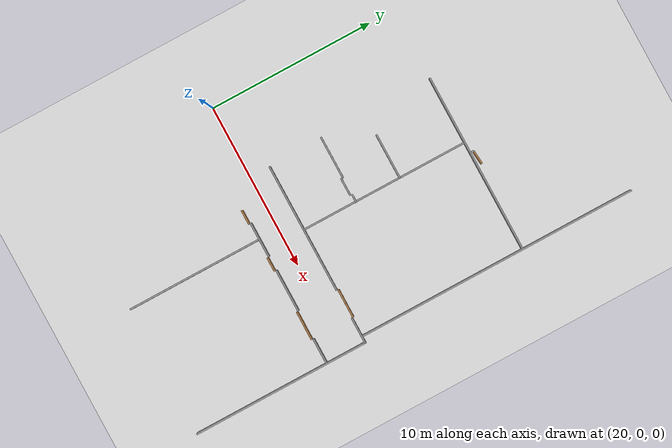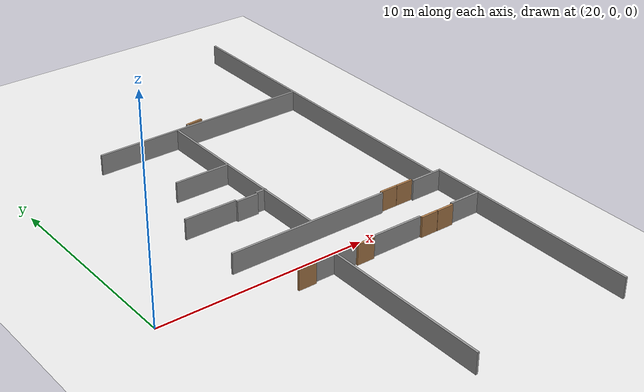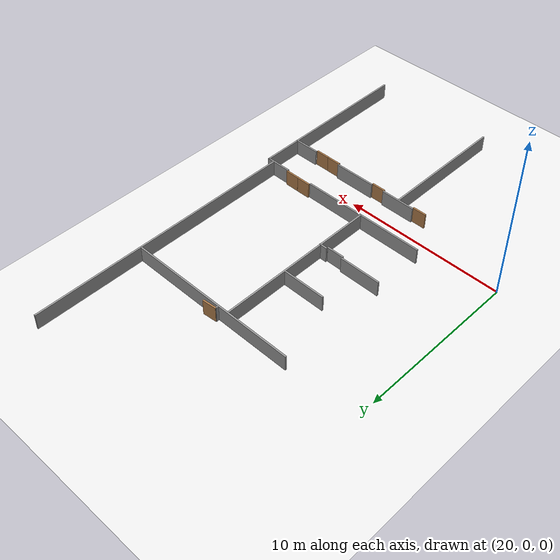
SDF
<sdf version="1.6">
 <world name="default">
  <model name="ground_plane">
   <static>1</static>
   <link name="link">
    <collision name="collision">
     <geometry><plane><normal>0 0 1</normal><size>100 100</size></plane></geometry>
     <surface><friction><ode><mu>100</mu><mu2>50</mu2></ode></friction></surface>
    </collision>
    <visual name="visual">
     <cast_shadows>0</cast_shadows>
     <geometry><plane><normal>0 0 1</normal><size>100 100</size></plane></geometry>
     <material>
      <script><uri>file://media/materials/scripts/gazebo.material</uri><name>Gazebo/WhiteGlow</name></script>
     </material>
    </visual>
   </link>
  </model>
  <model name="L81">
   <link name="link_clone_0_clone_0_clone_0_clone_clone">
    <pose>9.87549 45.6856 -0 0 -0 0</pose>
    <inertial>
     <mass>0.151422</mass>
     <inertia>
      <ixx>0.106624</ixx>
      <ixy>0</ixy>
      <ixz>0</ixz>
      <iyy>0.0127447</iyy>
      <iyz>0</iyz>
      <izz>0.0941318</izz>
     </inertia>
    </inertial>
    <visual name="visual">
     <geometry><box><size>0.1 2.72944 1</size></box></geometry>
     <material>
      <script><name>Gazebo/Grey</name><uri>file://media/materials/scripts/gazebo.material</uri></script>
      <shader type="pixel"><normal_map>__default__</normal_map></shader>
      <ambient>0.3 0.3 0.3 1</ambient>
      <diffuse>0.7 0.7 0.7 1</diffuse>
      <specular>0.01 0.01 0.01 1</specular>
      <emissive>0 0 0 1</emissive>
     </material>
    </visual>
    <collision name="collision">
     <geometry><box><size>0.1 2.72944 1</size></box></geometry>
     <surface>
      <friction>
       <ode><mu>1</mu><mu2>1</mu2><fdir1>0 0 0</fdir1><slip1>0</slip1><slip2>0</slip2></ode>
       <torsional>
        <coefficient>1</coefficient>
        <patch_radius>0</patch_radius>
        <surface_radius>0</surface_radius>
        <use_patch_radius>1</use_patch_radius>
        <ode><slip>0</slip></ode>
       </torsional>
      </friction>
      <bounce><restitution_coefficient>0</restitution_coefficient><threshold>1e+06</threshold></bounce>
      <contact>
       <collide_without_contact>0</collide_without_contact>
       <collide_without_contact_bitmask>1</collide_without_contact_bitmask>
       <collide_bitmask>1</collide_bitmask>
       <ode>
        <soft_cfm>0</soft_cfm>
        <soft_erp>0.2</soft_erp>
        <kp>1e+13</kp>
        <kd>1</kd>
        <max_vel>0.01</max_vel>
        <min_depth>0</min_depth>
       </ode>
       <bullet>
        <split_impulse>1</split_impulse>
        <split_impulse_penetration_threshold>-0.01</split_impulse_penetration_threshold>
        <soft_cfm>0</soft_cfm>
        <soft_erp>0.2</soft_erp>
        <kp>1e+13</kp>
        <kd>1</kd>
       </bullet>
      </contact>
     </surface>
    </collision>
   </link>
   <link name="link_clone_0_clone_0_clone_0_clone_clone_0">
    <pose>12.6493 46.8473 -0 0 -0 0</pose>
    <inertial>
     <mass>0.0297049</mass>
     <inertia>
      <ixx>0.00316281</ixx>
      <ixy>0</ixy>
      <ixz>0</ixz>
      <iyy>0.00250016</iyy>
      <iyz>0</iyz>
      <izz>0.000712157</izz>
     </inertia>
    </inertial>
    <visual name="visual">
     <geometry><box><size>0.1 0.526966 1</size></box></geometry>
     <material>
      <script><name>Gazebo/Grey</name><uri>file://media/materials/scripts/gazebo.material</uri></script>
      <shader type="pixel"><normal_map>__default__</normal_map></shader>
      <ambient>0.3 0.3 0.3 1</ambient>
      <diffuse>0.7 0.7 0.7 1</diffuse>
      <specular>0.01 0.01 0.01 1</specular>
      <emissive>0 0 0 1</emissive>
     </material>
    </visual>
    <collision name="collision">
     <geometry><box><size>0.1 0.526966 1</size></box></geometry>
     <surface>
      <friction>
       <ode><mu>1</mu><mu2>1</mu2><fdir1>0 0 0</fdir1><slip1>0</slip1><slip2>0</slip2></ode>
       <torsional>
        <coefficient>1</coefficient>
        <patch_radius>0</patch_radius>
        <surface_radius>0</surface_radius>
        <use_patch_radius>1</use_patch_radius>
        <ode><slip>0</slip></ode>
       </torsional>
      </friction>
      <bounce><restitution_coefficient>0</restitution_coefficient><threshold>1e+06</threshold></bounce>
      <contact>
       <collide_without_contact>0</collide_without_contact>
       <collide_without_contact_bitmask>1</collide_without_contact_bitmask>
       <collide_bitmask>1</collide_bitmask>
       <ode>
        <soft_cfm>0</soft_cfm>
        <soft_erp>0.2</soft_erp>
        <kp>1e+13</kp>
        <kd>1</kd>
        <max_vel>0.01</max_vel>
        <min_depth>0</min_depth>
       </ode>
       <bullet>
        <split_impulse>1</split_impulse>
        <split_impulse_penetration_threshold>-0.01</split_impulse_penetration_threshold>
        <soft_cfm>0</soft_cfm>
        <soft_erp>0.2</soft_erp>
        <kp>1e+13</kp>
        <kd>1</kd>
       </bullet>
      </contact>
     </surface>
    </collision>
   </link>
   <link name="link_clone_0_clone_0_clone_0_clone_clone_0_clone">
    <pose>12.6506 44.2533 0 0 -0 0</pose>
    <inertial>
     <mass>0.144952</mass>
     <inertia>
      <ixx>0.0919529</ixx>
      <ixy>0</ixy>
      <ixz>0</ixz>
      <iyy>0.0122002</iyy>
      <iyz>0</iyz>
      <izz>0.0799943</izz>
     </inertia>
    </inertial>
    <visual name="visual">
     <geometry><box><size>0.1 2.57146 1</size></box></geometry>
     <material>
      <script><name>Gazebo/Grey</name><uri>file://media/materials/scripts/gazebo.material</uri></script>
      <shader type="pixel"><normal_map>__default__</normal_map></shader>
      <ambient>0.3 0.3 0.3 1</ambient>
      <diffuse>0.7 0.7 0.7 1</diffuse>
      <specular>0.01 0.01 0.01 1</specular>
      <emissive>0 0 0 1</emissive>
     </material>
    </visual>
    <collision name="collision">
     <geometry><box><size>0.1 2.57146 1</size></box></geometry>
     <surface>
      <friction>
       <ode><mu>1</mu><mu2>1</mu2><fdir1>0 0 0</fdir1><slip1>0</slip1><slip2>0</slip2></ode>
       <torsional>
        <coefficient>1</coefficient>
        <patch_radius>0</patch_radius>
        <surface_radius>0</surface_radius>
        <use_patch_radius>1</use_patch_radius>
        <ode><slip>0</slip></ode>
       </torsional>
      </friction>
      <bounce><restitution_coefficient>0</restitution_coefficient><threshold>1e+06</threshold></bounce>
      <contact>
       <collide_without_contact>0</collide_without_contact>
       <collide_without_contact_bitmask>1</collide_without_contact_bitmask>
       <collide_bitmask>1</collide_bitmask>
       <ode>
        <soft_cfm>0</soft_cfm>
        <soft_erp>0.2</soft_erp>
        <kp>1e+13</kp>
        <kd>1</kd>
        <max_vel>0.01</max_vel>
        <min_depth>0</min_depth>
       </ode>
       <bullet>
        <split_impulse>1</split_impulse>
        <split_impulse_penetration_threshold>-0.01</split_impulse_penetration_threshold>
        <soft_cfm>0</soft_cfm>
        <soft_erp>0.2</soft_erp>
        <kp>1e+13</kp>
        <kd>1</kd>
       </bullet>
      </contact>
     </surface>
    </collision>
   </link>
   <link name="link_clone_0_clone_0_clone_4">
    <pose>15.9367 53.4298 0 0 -0 0</pose>
    <inertial>
     <mass>0.09101</mass>
     <inertia>
      <ixx>0.0273534</ixx>
      <ixy>0</ixy>
      <ixz>0</ixz>
      <iyy>0.00766</iyy>
      <iyz>0</iyz>
      <izz>0.0198451</izz>
     </inertia>
    </inertial>
    <visual name="visual">
     <geometry><box><size>0.1 1.61451 1</size></box></geometry>
     <material>
      <script><name>Gazebo/Grey</name><uri>file://media/materials/scripts/gazebo.material</uri></script>
      <shader type="pixel"><normal_map>__default__</normal_map></shader>
      <ambient>0.3 0.3 0.3 1</ambient>
      <diffuse>0.7 0.7 0.7 1</diffuse>
      <specular>0.01 0.01 0.01 1</specular>
      <emissive>0 0 0 1</emissive>
     </material>
    </visual>
    <collision name="collision">
     <geometry><box><size>0.1 1.61451 1</size></box></geometry>
     <surface>
      <friction>
       <ode><mu>1</mu><mu2>1</mu2><fdir1>0 0 0</fdir1><slip1>0</slip1><slip2>0</slip2></ode>
       <torsional>
        <coefficient>1</coefficient>
        <patch_radius>0</patch_radius>
        <surface_radius>0</surface_radius>
        <use_patch_radius>1</use_patch_radius>
        <ode><slip>0</slip></ode>
       </torsional>
      </friction>
      <bounce><restitution_coefficient>0</restitution_coefficient><threshold>1e+06</threshold></bounce>
      <contact>
       <collide_without_contact>0</collide_without_contact>
       <collide_without_contact_bitmask>1</collide_without_contact_bitmask>
       <collide_bitmask>1</collide_bitmask>
       <ode>
        <soft_cfm>0</soft_cfm>
        <soft_erp>0.2</soft_erp>
        <kp>1e+13</kp>
        <kd>1</kd>
        <max_vel>0.01</max_vel>
        <min_depth>0</min_depth>
       </ode>
       <bullet>
        <split_impulse>1</split_impulse>
        <split_impulse_penetration_threshold>-0.01</split_impulse_penetration_threshold>
        <soft_cfm>0</soft_cfm>
        <soft_erp>0.2</soft_erp>
        <kp>1e+13</kp>
        <kd>1</kd>
       </bullet>
      </contact>
     </surface>
    </collision>
   </link>
   <link name="link_clone_0_clone_0_clone_4_clone">
    <pose>18.3647 53.4371 -0 0 -0 0</pose>
    <inertial>
     <mass>0.09101</mass>
     <inertia>
      <ixx>0.0273534</ixx>
      <ixy>0</ixy>
      <ixz>0</ixz>
      <iyy>0.00766</iyy>
      <iyz>0</iyz>
      <izz>0.0198451</izz>
     </inertia>
    </inertial>
    <visual name="visual">
     <geometry><box><size>0.1 1.61451 1</size></box></geometry>
     <material>
      <script><name>Gazebo/Grey</name><uri>file://media/materials/scripts/gazebo.material</uri></script>
      <shader type="pixel"><normal_map>__default__</normal_map></shader>
      <ambient>0.3 0.3 0.3 1</ambient>
      <diffuse>0.7 0.7 0.7 1</diffuse>
      <specular>0.01 0.01 0.01 1</specular>
      <emissive>0 0 0 1</emissive>
     </material>
    </visual>
    <collision name="collision">
     <geometry><box><size>0.1 1.61451 1</size></box></geometry>
     <surface>
      <friction>
       <ode><mu>1</mu><mu2>1</mu2><fdir1>0 0 0</fdir1><slip1>0</slip1><slip2>0</slip2></ode>
       <torsional>
        <coefficient>1</coefficient>
        <patch_radius>0</patch_radius>
        <surface_radius>0</surface_radius>
        <use_patch_radius>1</use_patch_radius>
        <ode><slip>0</slip></ode>
       </torsional>
      </friction>
      <bounce><restitution_coefficient>0</restitution_coefficient><threshold>1e+06</threshold></bounce>
      <contact>
       <collide_without_contact>0</collide_without_contact>
       <collide_without_contact_bitmask>1</collide_without_contact_bitmask>
       <collide_bitmask>1</collide_bitmask>
       <ode>
        <soft_cfm>0</soft_cfm>
        <soft_erp>0.2</soft_erp>
        <kp>1e+13</kp>
        <kd>1</kd>
        <max_vel>0.01</max_vel>
        <min_depth>0</min_depth>
       </ode>
       <bullet>
        <split_impulse>1</split_impulse>
        <split_impulse_penetration_threshold>-0.01</split_impulse_penetration_threshold>
        <soft_cfm>0</soft_cfm>
        <soft_erp>0.2</soft_erp>
        <kp>1e+13</kp>
        <kd>1</kd>
       </bullet>
      </contact>
     </surface>
    </collision>
   </link>
   <link name="link_clone_0_clone_0_clone_clone">
    <pose>18.3599 49.5759 0 0 -0 0</pose>
    <inertial>
     <mass>0.146739</mass>
     <inertia>
      <ixx>0.0950924</ixx>
      <ixy>0</ixy>
      <ixz>0</ixz>
      <iyy>0.0123506</iyy>
      <iyz>0</iyz>
      <izz>0.0829864</izz>
     </inertia>
    </inertial>
    <visual name="visual">
     <geometry><box><size>0.1 2.60316 1</size></box></geometry>
     <material>
      <script><name>Gazebo/Grey</name><uri>file://media/materials/scripts/gazebo.material</uri></script>
      <shader type="pixel"><normal_map>__default__</normal_map></shader>
      <ambient>0.3 0.3 0.3 1</ambient>
      <diffuse>0.7 0.7 0.7 1</diffuse>
      <specular>0.01 0.01 0.01 1</specular>
      <emissive>0 0 0 1</emissive>
     </material>
    </visual>
    <collision name="collision">
     <geometry><box><size>0.1 2.60316 1</size></box></geometry>
     <surface>
      <friction>
       <ode><mu>1</mu><mu2>1</mu2><fdir1>0 0 0</fdir1><slip1>0</slip1><slip2>0</slip2></ode>
       <torsional>
        <coefficient>1</coefficient>
        <patch_radius>0</patch_radius>
        <surface_radius>0</surface_radius>
        <use_patch_radius>1</use_patch_radius>
        <ode><slip>0</slip></ode>
       </torsional>
      </friction>
      <bounce><restitution_coefficient>0</restitution_coefficient><threshold>1e+06</threshold></bounce>
      <contact>
       <collide_without_contact>0</collide_without_contact>
       <collide_without_contact_bitmask>1</collide_without_contact_bitmask>
       <collide_bitmask>1</collide_bitmask>
       <ode>
        <soft_cfm>0</soft_cfm>
        <soft_erp>0.2</soft_erp>
        <kp>1e+13</kp>
        <kd>1</kd>
        <max_vel>0.01</max_vel>
        <min_depth>0</min_depth>
       </ode>
       <bullet>
        <split_impulse>1</split_impulse>
        <split_impulse_penetration_threshold>-0.01</split_impulse_penetration_threshold>
        <soft_cfm>0</soft_cfm>
        <soft_erp>0.2</soft_erp>
        <kp>1e+13</kp>
        <kd>1</kd>
       </bullet>
      </contact>
     </surface>
    </collision>
   </link>
   <link name="link_clone_0_clone_0_clone_clone_clone">
    <pose>18.3616 46.3679 -0 0 -0 0</pose>
    <inertial>
     <mass>0.120818</mass>
     <inertia>
      <ixx>0.056319</ixx>
      <ixy>0</ixy>
      <ixz>0</ixz>
      <iyy>0.0101688</iyy>
      <iyz>0</iyz>
      <izz>0.0463515</izz>
     </inertia>
    </inertial>
    <visual name="visual">
     <geometry><box><size>0.1 2.14331 1</size></box></geometry>
     <material>
      <script><name>Gazebo/Grey</name><uri>file://media/materials/scripts/gazebo.material</uri></script>
      <shader type="pixel"><normal_map>__default__</normal_map></shader>
      <ambient>0.3 0.3 0.3 1</ambient>
      <diffuse>0.7 0.7 0.7 1</diffuse>
      <specular>0.01 0.01 0.01 1</specular>
      <emissive>0 0 0 1</emissive>
     </material>
    </visual>
    <collision name="collision">
     <geometry><box><size>0.1 2.14331 1</size></box></geometry>
     <surface>
      <friction>
       <ode><mu>1</mu><mu2>1</mu2><fdir1>0 0 0</fdir1><slip1>0</slip1><slip2>0</slip2></ode>
       <torsional>
        <coefficient>1</coefficient>
        <patch_radius>0</patch_radius>
        <surface_radius>0</surface_radius>
        <use_patch_radius>1</use_patch_radius>
        <ode><slip>0</slip></ode>
       </torsional>
      </friction>
      <bounce><restitution_coefficient>0</restitution_coefficient><threshold>1e+06</threshold></bounce>
      <contact>
       <collide_without_contact>0</collide_without_contact>
       <collide_without_contact_bitmask>1</collide_without_contact_bitmask>
       <collide_bitmask>1</collide_bitmask>
       <ode>
        <soft_cfm>0</soft_cfm>
        <soft_erp>0.2</soft_erp>
        <kp>1e+13</kp>
        <kd>1</kd>
        <max_vel>0.01</max_vel>
        <min_depth>0</min_depth>
       </ode>
       <bullet>
        <split_impulse>1</split_impulse>
        <split_impulse_penetration_threshold>-0.01</split_impulse_penetration_threshold>
        <soft_cfm>0</soft_cfm>
        <soft_erp>0.2</soft_erp>
        <kp>1e+13</kp>
        <kd>1</kd>
       </bullet>
      </contact>
     </surface>
    </collision>
   </link>
   <link name="link_clone_0_clone_clone_0">
    <pose>5.76701 48.3737 -0 0 -0 0</pose>
    <inertial>
     <mass>1</mass>
     <inertia>
      <ixx>0.166667</ixx>
      <ixy>0</ixy>
      <ixz>0</ixz>
      <iyy>0.166667</iyy>
      <iyz>0</iyz>
      <izz>0.166667</izz>
     </inertia>
    </inertial>
    <visual name="visual">
     <geometry><box><size>0.1 10.82 1</size></box></geometry>
     <material>
      <script><name>Gazebo/Grey</name><uri>file://media/materials/scripts/gazebo.material</uri></script>
      <shader type="pixel"><normal_map>__default__</normal_map></shader>
      <ambient>0.3 0.3 0.3 1</ambient>
      <diffuse>0.7 0.7 0.7 1</diffuse>
      <specular>0.01 0.01 0.01 1</specular>
      <emissive>0 0 0 1</emissive>
     </material>
    </visual>
    <collision name="collision">
     <geometry><box><size>0.1 10.82 1</size></box></geometry>
     <surface>
      <friction>
       <ode><mu>1</mu><mu2>1</mu2><fdir1>0 0 0</fdir1><slip1>0</slip1><slip2>0</slip2></ode>
       <torsional>
        <coefficient>1</coefficient>
        <patch_radius>0</patch_radius>
        <surface_radius>0</surface_radius>
        <use_patch_radius>1</use_patch_radius>
        <ode><slip>0</slip></ode>
       </torsional>
      </friction>
      <bounce><restitution_coefficient>0</restitution_coefficient><threshold>1e+06</threshold></bounce>
      <contact>
       <collide_without_contact>0</collide_without_contact>
       <collide_without_contact_bitmask>1</collide_without_contact_bitmask>
       <collide_bitmask>1</collide_bitmask>
       <ode>
        <soft_cfm>0</soft_cfm>
        <soft_erp>0.2</soft_erp>
        <kp>1e+13</kp>
        <kd>1</kd>
        <max_vel>0.01</max_vel>
        <min_depth>0</min_depth>
       </ode>
       <bullet>
        <split_impulse>1</split_impulse>
        <split_impulse_penetration_threshold>-0.01</split_impulse_penetration_threshold>
        <soft_cfm>0</soft_cfm>
        <soft_erp>0.2</soft_erp>
        <kp>1e+13</kp>
        <kd>1</kd>
       </bullet>
      </contact>
     </surface>
    </collision>
   </link>
   <link name="link_clone_0_clone_clone_0_clone_clone_clone_1_clone_2">
    <pose>15.9412 46.9593 -0 0 -0 0</pose>
    <inertial>
     <mass>0.717222</mass>
     <inertia>
      <ixx>3.74216</ixx>
      <ixy>0</ixy>
      <ixz>0</ixz>
      <iyy>0.0603662</iyy>
      <iyz>0</iyz>
      <izz>3.68299</izz>
     </inertia>
    </inertial>
    <visual name="visual">
     <geometry><box><size>0.1 7.84926 1</size></box></geometry>
     <material>
      <script><name>Gazebo/Grey</name><uri>file://media/materials/scripts/gazebo.material</uri></script>
      <shader type="pixel"><normal_map>__default__</normal_map></shader>
      <ambient>0.3 0.3 0.3 1</ambient>
      <diffuse>0.7 0.7 0.7 1</diffuse>
      <specular>0.01 0.01 0.01 1</specular>
      <emissive>0 0 0 1</emissive>
     </material>
    </visual>
    <collision name="collision">
     <geometry><box><size>0.1 7.84926 1</size></box></geometry>
     <surface>
      <friction>
       <ode><mu>1</mu><mu2>1</mu2><fdir1>0 0 0</fdir1><slip1>0</slip1><slip2>0</slip2></ode>
       <torsional>
        <coefficient>1</coefficient>
        <patch_radius>0</patch_radius>
        <surface_radius>0</surface_radius>
        <use_patch_radius>1</use_patch_radius>
        <ode><slip>0</slip></ode>
       </torsional>
      </friction>
      <bounce><restitution_coefficient>0</restitution_coefficient><threshold>1e+06</threshold></bounce>
      <contact>
       <collide_without_contact>0</collide_without_contact>
       <collide_without_contact_bitmask>1</collide_without_contact_bitmask>
       <collide_bitmask>1</collide_bitmask>
       <ode>
        <soft_cfm>0</soft_cfm>
        <soft_erp>0.2</soft_erp>
        <kp>1e+13</kp>
        <kd>1</kd>
        <max_vel>0.01</max_vel>
        <min_depth>0</min_depth>
       </ode>
       <bullet>
        <split_impulse>1</split_impulse>
        <split_impulse_penetration_threshold>-0.01</split_impulse_penetration_threshold>
        <soft_cfm>0</soft_cfm>
        <soft_erp>0.2</soft_erp>
        <kp>1e+13</kp>
        <kd>1</kd>
       </bullet>
      </contact>
     </surface>
    </collision>
   </link>
   <link name="link_clone_0_clone_clone_0_clone_clone_clone_2_clone_clone_clone">
    <pose>5.52582 48.1147 -0 0 -0 0.089586</pose>
    <inertial>
     <mass>1.01517</mass>
     <inertia><ixx>5.4708</ixx><ixy>0</ixy><ixz>0</ixz><iyy>0.0854436</iyy><iyz>0</iyz><izz>5.38705</izz></inertia>
    </inertial>
    <visual name="visual">
     <geometry><box><size>0.1 0.87 1</size></box></geometry>
     <material>
      <script><name>Gazebo/Wood</name><uri>file://media/materials/scripts/gazebo.material</uri></script>
      <shader type="pixel"><normal_map>__default__</normal_map></shader>
      <ambient>0.3 0.3 0.3 1</ambient>
      <diffuse>0.7 0.7 0.7 1</diffuse>
      <specular>0.01 0.01 0.01 1</specular>
      <emissive>0 0 0 1</emissive>
     </material>
    </visual>
    <collision name="collision">
     <geometry><box><size>0.1 0.87 1</size></box></geometry>
     <surface>
      <friction>
       <ode><mu>1</mu><mu2>1</mu2><fdir1>0 0 0</fdir1><slip1>0</slip1><slip2>0</slip2></ode>
       <torsional>
        <coefficient>1</coefficient>
        <patch_radius>0</patch_radius>
        <surface_radius>0</surface_radius>
        <use_patch_radius>1</use_patch_radius>
        <ode><slip>0</slip></ode>
       </torsional>
      </friction>
      <bounce><restitution_coefficient>0</restitution_coefficient><threshold>1e+06</threshold></bounce>
      <contact>
       <collide_without_contact>0</collide_without_contact>
       <collide_without_contact_bitmask>1</collide_without_contact_bitmask>
       <collide_bitmask>1</collide_bitmask>
       <ode>
        <soft_cfm>0</soft_cfm>
        <soft_erp>0.2</soft_erp>
        <kp>1e+13</kp>
        <kd>1</kd>
        <max_vel>0.01</max_vel>
        <min_depth>0</min_depth>
       </ode>
       <bullet>
        <split_impulse>1</split_impulse>
        <split_impulse_penetration_threshold>-0.01</split_impulse_penetration_threshold>
        <soft_cfm>0</soft_cfm>
        <soft_erp>0.2</soft_erp>
        <kp>1e+13</kp>
        <kd>1</kd>
       </bullet>
      </contact>
     </surface>
    </collision>
   </link>
   <link name="link_clone_0_clone_clone_0_clone_clone_clone_2_clone_clone_clone_0">
    <pose>18.4604 52.1879 -0 0 -0 0</pose>
    <inertial>
     <mass>1.01517</mass>
     <inertia><ixx>5.4708</ixx><ixy>0</ixy><ixz>0</ixz><iyy>0.0854436</iyy><iyz>0</iyz><izz>5.38705</izz></inertia>
    </inertial>
    <visual name="visual">
     <geometry><box><size>0.1 0.87 1</size></box></geometry>
     <material>
      <script><name>Gazebo/Wood</name><uri>file://media/materials/scripts/gazebo.material</uri></script>
      <shader type="pixel"><normal_map>__default__</normal_map></shader>
      <ambient>0.3 0.3 0.3 1</ambient>
      <diffuse>0.7 0.7 0.7 1</diffuse>
      <specular>0.01 0.01 0.01 1</specular>
      <emissive>0 0 0 1</emissive>
     </material>
    </visual>
    <collision name="collision">
     <geometry><box><size>0.1 0.87 1</size></box></geometry>
     <surface>
      <friction>
       <ode><mu>1</mu><mu2>1</mu2><fdir1>0 0 0</fdir1><slip1>0</slip1><slip2>0</slip2></ode>
       <torsional>
        <coefficient>1</coefficient>
        <patch_radius>0</patch_radius>
        <surface_radius>0</surface_radius>
        <use_patch_radius>1</use_patch_radius>
        <ode><slip>0</slip></ode>
       </torsional>
      </friction>
      <bounce><restitution_coefficient>0</restitution_coefficient><threshold>1e+06</threshold></bounce>
      <contact>
       <collide_without_contact>0</collide_without_contact>
       <collide_without_contact_bitmask>1</collide_without_contact_bitmask>
       <collide_bitmask>1</collide_bitmask>
       <ode>
        <soft_cfm>0</soft_cfm>
        <soft_erp>0.2</soft_erp>
        <kp>1e+13</kp>
        <kd>1</kd>
        <max_vel>0.01</max_vel>
        <min_depth>0</min_depth>
       </ode>
       <bullet>
        <split_impulse>1</split_impulse>
        <split_impulse_penetration_threshold>-0.01</split_impulse_penetration_threshold>
        <soft_cfm>0</soft_cfm>
        <soft_erp>0.2</soft_erp>
        <kp>1e+13</kp>
        <kd>1</kd>
       </bullet>
      </contact>
     </surface>
    </collision>
   </link>
   <link name="link_clone_0_clone_clone_0_clone_clone_clone_2_clone_clone_clone_0_clone">
    <pose>18.4539 51.3137 0 0 -0 0</pose>
    <inertial>
     <mass>1.01517</mass>
     <inertia><ixx>5.4708</ixx><ixy>0</ixy><ixz>0</ixz><iyy>0.0854436</iyy><iyz>0</iyz><izz>5.38705</izz></inertia>
    </inertial>
    <visual name="visual">
     <geometry><box><size>0.1 0.87 1</size></box></geometry>
     <material>
      <script><name>Gazebo/Wood</name><uri>file://media/materials/scripts/gazebo.material</uri></script>
      <shader type="pixel"><normal_map>__default__</normal_map></shader>
      <ambient>0.3 0.3 0.3 1</ambient>
      <diffuse>0.7 0.7 0.7 1</diffuse>
      <specular>0.01 0.01 0.01 1</specular>
      <emissive>0 0 0 1</emissive>
     </material>
    </visual>
    <collision name="collision">
     <geometry><box><size>0.1 0.87 1</size></box></geometry>
     <surface>
      <friction>
       <ode><mu>1</mu><mu2>1</mu2><fdir1>0 0 0</fdir1><slip1>0</slip1><slip2>0</slip2></ode>
       <torsional>
        <coefficient>1</coefficient>
        <patch_radius>0</patch_radius>
        <surface_radius>0</surface_radius>
        <use_patch_radius>1</use_patch_radius>
        <ode><slip>0</slip></ode>
       </torsional>
      </friction>
      <bounce><restitution_coefficient>0</restitution_coefficient><threshold>1e+06</threshold></bounce>
      <contact>
       <collide_without_contact>0</collide_without_contact>
       <collide_without_contact_bitmask>1</collide_without_contact_bitmask>
       <collide_bitmask>1</collide_bitmask>
       <ode>
        <soft_cfm>0</soft_cfm>
        <soft_erp>0.2</soft_erp>
        <kp>1e+13</kp>
        <kd>1</kd>
        <max_vel>0.01</max_vel>
        <min_depth>0</min_depth>
       </ode>
       <bullet>
        <split_impulse>1</split_impulse>
        <split_impulse_penetration_threshold>-0.01</split_impulse_penetration_threshold>
        <soft_cfm>0</soft_cfm>
        <soft_erp>0.2</soft_erp>
        <kp>1e+13</kp>
        <kd>1</kd>
       </bullet>
      </contact>
     </surface>
    </collision>
   </link>
   <link name="link_clone_0_clone_clone_0_clone_clone_clone_2_clone_clone_clone_0_clone_clone">
    <pose>18.4555 47.8638 -0 0 -0 0</pose>
    <inertial>
     <mass>1.01517</mass>
     <inertia><ixx>5.4708</ixx><ixy>0</ixy><ixz>0</ixz><iyy>0.0854436</iyy><iyz>0</iyz><izz>5.38705</izz></inertia>
    </inertial>
    <visual name="visual">
     <geometry><box><size>0.1 0.87 1</size></box></geometry>
     <material>
      <script><name>Gazebo/Wood</name><uri>file://media/materials/scripts/gazebo.material</uri></script>
      <shader type="pixel"><normal_map>__default__</normal_map></shader>
      <ambient>0.3 0.3 0.3 1</ambient>
      <diffuse>0.7 0.7 0.7 1</diffuse>
      <specular>0.01 0.01 0.01 1</specular>
      <emissive>0 0 0 1</emissive>
     </material>
    </visual>
    <collision name="collision">
     <geometry><box><size>0.1 0.87 1</size></box></geometry>
     <surface>
      <friction>
       <ode><mu>1</mu><mu2>1</mu2><fdir1>0 0 0</fdir1><slip1>0</slip1><slip2>0</slip2></ode>
       <torsional>
        <coefficient>1</coefficient>
        <patch_radius>0</patch_radius>
        <surface_radius>0</surface_radius>
        <use_patch_radius>1</use_patch_radius>
        <ode><slip>0</slip></ode>
       </torsional>
      </friction>
      <bounce><restitution_coefficient>0</restitution_coefficient><threshold>1e+06</threshold></bounce>
      <contact>
       <collide_without_contact>0</collide_without_contact>
       <collide_without_contact_bitmask>1</collide_without_contact_bitmask>
       <collide_bitmask>1</collide_bitmask>
       <ode>
        <soft_cfm>0</soft_cfm>
        <soft_erp>0.2</soft_erp>
        <kp>1e+13</kp>
        <kd>1</kd>
        <max_vel>0.01</max_vel>
        <min_depth>0</min_depth>
       </ode>
       <bullet>
        <split_impulse>1</split_impulse>
        <split_impulse_penetration_threshold>-0.01</split_impulse_penetration_threshold>
        <soft_cfm>0</soft_cfm>
        <soft_erp>0.2</soft_erp>
        <kp>1e+13</kp>
        <kd>1</kd>
       </bullet>
      </contact>
     </surface>
    </collision>
   </link>
   <link name="link_clone_0_clone_clone_0_clone_clone_clone_2_clone_clone_clone_0_clone_clone_0">
    <pose>15.845 51.3162 -0 0 -0 0</pose>
    <inertial>
     <mass>1.01517</mass>
     <inertia><ixx>5.4708</ixx><ixy>0</ixy><ixz>0</ixz><iyy>0.0854436</iyy><iyz>0</iyz><izz>5.38705</izz></inertia>
    </inertial>
    <visual name="visual">
     <geometry><box><size>0.1 0.87 1</size></box></geometry>
     <material>
      <script><name>Gazebo/Wood</name><uri>file://media/materials/scripts/gazebo.material</uri></script>
      <shader type="pixel"><normal_map>__default__</normal_map></shader>
      <ambient>0.3 0.3 0.3 1</ambient>
      <diffuse>0.7 0.7 0.7 1</diffuse>
      <specular>0.01 0.01 0.01 1</specular>
      <emissive>0 0 0 1</emissive>
     </material>
    </visual>
    <collision name="collision">
     <geometry><box><size>0.1 0.87 1</size></box></geometry>
     <surface>
      <friction>
       <ode><mu>1</mu><mu2>1</mu2><fdir1>0 0 0</fdir1><slip1>0</slip1><slip2>0</slip2></ode>
       <torsional>
        <coefficient>1</coefficient>
        <patch_radius>0</patch_radius>
        <surface_radius>0</surface_radius>
        <use_patch_radius>1</use_patch_radius>
        <ode><slip>0</slip></ode>
       </torsional>
      </friction>
      <bounce><restitution_coefficient>0</restitution_coefficient><threshold>1e+06</threshold></bounce>
      <contact>
       <collide_without_contact>0</collide_without_contact>
       <collide_without_contact_bitmask>1</collide_without_contact_bitmask>
       <collide_bitmask>1</collide_bitmask>
       <ode>
        <soft_cfm>0</soft_cfm>
        <soft_erp>0.2</soft_erp>
        <kp>1e+13</kp>
        <kd>1</kd>
        <max_vel>0.01</max_vel>
        <min_depth>0</min_depth>
       </ode>
       <bullet>
        <split_impulse>1</split_impulse>
        <split_impulse_penetration_threshold>-0.01</split_impulse_penetration_threshold>
        <soft_cfm>0</soft_cfm>
        <soft_erp>0.2</soft_erp>
        <kp>1e+13</kp>
        <kd>1</kd>
       </bullet>
      </contact>
     </surface>
    </collision>
   </link>
   <link name="link_clone_0_clone_clone_0_clone_clone_clone_2_clone_clone_clone_0_clone_clone_0_clone">
    <pose>15.8465 52.1898 -0 0 -0 0</pose>
    <inertial>
     <mass>1.01517</mass>
     <inertia><ixx>5.4708</ixx><ixy>0</ixy><ixz>0</ixz><iyy>0.0854436</iyy><iyz>0</iyz><izz>5.38705</izz></inertia>
    </inertial>
    <visual name="visual">
     <geometry><box><size>0.1 0.87 1</size></box></geometry>
     <material>
      <script><name>Gazebo/Wood</name><uri>file://media/materials/scripts/gazebo.material</uri></script>
      <shader type="pixel"><normal_map>__default__</normal_map></shader>
      <ambient>0.3 0.3 0.3 1</ambient>
      <diffuse>0.7 0.7 0.7 1</diffuse>
      <specular>0.01 0.01 0.01 1</specular>
      <emissive>0 0 0 1</emissive>
     </material>
    </visual>
    <collision name="collision">
     <geometry><box><size>0.1 0.87 1</size></box></geometry>
     <surface>
      <friction>
       <ode><mu>1</mu><mu2>1</mu2><fdir1>0 0 0</fdir1><slip1>0</slip1><slip2>0</slip2></ode>
       <torsional>
        <coefficient>1</coefficient>
        <patch_radius>0</patch_radius>
        <surface_radius>0</surface_radius>
        <use_patch_radius>1</use_patch_radius>
        <ode><slip>0</slip></ode>
       </torsional>
      </friction>
      <bounce><restitution_coefficient>0</restitution_coefficient><threshold>1e+06</threshold></bounce>
      <contact>
       <collide_without_contact>0</collide_without_contact>
       <collide_without_contact_bitmask>1</collide_without_contact_bitmask>
       <collide_bitmask>1</collide_bitmask>
       <ode>
        <soft_cfm>0</soft_cfm>
        <soft_erp>0.2</soft_erp>
        <kp>1e+13</kp>
        <kd>1</kd>
        <max_vel>0.01</max_vel>
        <min_depth>0</min_depth>
       </ode>
       <bullet>
        <split_impulse>1</split_impulse>
        <split_impulse_penetration_threshold>-0.01</split_impulse_penetration_threshold>
        <soft_cfm>0</soft_cfm>
        <soft_erp>0.2</soft_erp>
        <kp>1e+13</kp>
        <kd>1</kd>
       </bullet>
      </contact>
     </surface>
    </collision>
   </link>
   <link name="link_clone_0_clone_clone_0_clone_clone_clone_2_clone_clone_clone_0_clone_clone_clone_0">
    <pose>18.4577 44.887 0 0 -0 0</pose>
    <inertial>
     <mass>1.01517</mass>
     <inertia><ixx>5.4708</ixx><ixy>0</ixy><ixz>0</ixz><iyy>0.0854436</iyy><iyz>0</iyz><izz>5.38705</izz></inertia>
    </inertial>
    <visual name="visual">
     <geometry><box><size>0.1 0.87 1</size></box></geometry>
     <material>
      <script><name>Gazebo/Wood</name><uri>file://media/materials/scripts/gazebo.material</uri></script>
      <shader type="pixel"><normal_map>__default__</normal_map></shader>
      <ambient>0.3 0.3 0.3 1</ambient>
      <diffuse>0.7 0.7 0.7 1</diffuse>
      <specular>0.01 0.01 0.01 1</specular>
      <emissive>0 0 0 1</emissive>
     </material>
    </visual>
    <collision name="collision">
     <geometry><box><size>0.1 0.87 1</size></box></geometry>
     <surface>
      <friction>
       <ode><mu>1</mu><mu2>1</mu2><fdir1>0 0 0</fdir1><slip1>0</slip1><slip2>0</slip2></ode>
       <torsional>
        <coefficient>1</coefficient>
        <patch_radius>0</patch_radius>
        <surface_radius>0</surface_radius>
        <use_patch_radius>1</use_patch_radius>
        <ode><slip>0</slip></ode>
       </torsional>
      </friction>
      <bounce><restitution_coefficient>0</restitution_coefficient><threshold>1e+06</threshold></bounce>
      <contact>
       <collide_without_contact>0</collide_without_contact>
       <collide_without_contact_bitmask>1</collide_without_contact_bitmask>
       <collide_bitmask>1</collide_bitmask>
       <ode>
        <soft_cfm>0</soft_cfm>
        <soft_erp>0.2</soft_erp>
        <kp>1e+13</kp>
        <kd>1</kd>
        <max_vel>0.01</max_vel>
        <min_depth>0</min_depth>
       </ode>
       <bullet>
        <split_impulse>1</split_impulse>
        <split_impulse_penetration_threshold>-0.01</split_impulse_penetration_threshold>
        <soft_cfm>0</soft_cfm>
        <soft_erp>0.2</soft_erp>
        <kp>1e+13</kp>
        <kd>1</kd>
       </bullet>
      </contact>
     </surface>
    </collision>
   </link>
   <link name="link_clone_0_clone_clone_0_clone_clone_clone_2_clone_clone_clone_0_clone_clone_clone_clone_clone_0_clone_clone">
    <pose>12.7597 46.0527 -0 0 -0 0</pose>
    <inertial>
     <mass>1.01517</mass>
     <inertia><ixx>5.4708</ixx><ixy>0</ixy><ixz>0</ixz><iyy>0.0854436</iyy><iyz>0</iyz><izz>5.38705</izz></inertia>
    </inertial>
    <visual name="visual">
     <geometry><box><size>0.1 1.07 1</size></box></geometry>
     <material>
      <script><name>Gazebo/Grey</name><uri>file://media/materials/scripts/gazebo.material</uri></script>
      <shader type="pixel"><normal_map>__default__</normal_map></shader>
      <ambient>0.3 0.3 0.3 1</ambient>
      <diffuse>0.7 0.7 0.7 1</diffuse>
      <specular>0.01 0.01 0.01 1</specular>
      <emissive>0 0 0 1</emissive>
     </material>
    </visual>
    <collision name="collision">
     <geometry><box><size>0.1 1.07 1</size></box></geometry>
     <surface>
      <friction>
       <ode><mu>1</mu><mu2>1</mu2><fdir1>0 0 0</fdir1><slip1>0</slip1><slip2>0</slip2></ode>
       <torsional>
        <coefficient>1</coefficient>
        <patch_radius>0</patch_radius>
        <surface_radius>0</surface_radius>
        <use_patch_radius>1</use_patch_radius>
        <ode><slip>0</slip></ode>
       </torsional>
      </friction>
      <bounce><restitution_coefficient>0</restitution_coefficient><threshold>1e+06</threshold></bounce>
      <contact>
       <collide_without_contact>0</collide_without_contact>
       <collide_without_contact_bitmask>1</collide_without_contact_bitmask>
       <collide_bitmask>1</collide_bitmask>
       <ode>
        <soft_cfm>0</soft_cfm>
        <soft_erp>0.2</soft_erp>
        <kp>1e+13</kp>
        <kd>1</kd>
        <max_vel>0.01</max_vel>
        <min_depth>0</min_depth>
       </ode>
       <bullet>
        <split_impulse>1</split_impulse>
        <split_impulse_penetration_threshold>-0.01</split_impulse_penetration_threshold>
        <soft_cfm>0</soft_cfm>
        <soft_erp>0.2</soft_erp>
        <kp>1e+13</kp>
        <kd>1</kd>
       </bullet>
      </contact>
     </surface>
    </collision>
   </link>
   <link name="link_clone_clone_clone_0_clone_clone">
    <pose>5.63344 47.6985 0 0 -0 0</pose>
    <inertial>
     <mass>0.208024</mass>
     <inertia>
      <ixx>0.0175087</ixx>
      <ixy>0</ixy>
      <ixz>0</ixz>
      <iyy>0.0179163</iyy>
      <iyz>0</iyz>
      <izz>0.000754281</izz>
     </inertia>
    </inertial>
    <visual name="visual">
     <geometry><box><size>0.18306 0.1 1</size></box></geometry>
     <material>
      <script><name>Gazebo/Grey</name><uri>file://media/materials/scripts/gazebo.material</uri></script>
      <shader type="pixel"><normal_map>__default__</normal_map></shader>
      <ambient>0.3 0.3 0.3 1</ambient>
      <diffuse>0.7 0.7 0.7 1</diffuse>
      <specular>0.01 0.01 0.01 1</specular>
      <emissive>0 0 0 1</emissive>
     </material>
    </visual>
    <collision name="collision">
     <geometry><box><size>0.18306 0.1 1</size></box></geometry>
     <surface>
      <friction>
       <ode><mu>1</mu><mu2>1</mu2><fdir1>0 0 0</fdir1><slip1>0</slip1><slip2>0</slip2></ode>
       <torsional>
        <coefficient>1</coefficient>
        <patch_radius>0</patch_radius>
        <surface_radius>0</surface_radius>
        <use_patch_radius>1</use_patch_radius>
        <ode><slip>0</slip></ode>
       </torsional>
      </friction>
      <bounce><restitution_coefficient>0</restitution_coefficient><threshold>1e+06</threshold></bounce>
      <contact>
       <collide_without_contact>0</collide_without_contact>
       <collide_without_contact_bitmask>1</collide_without_contact_bitmask>
       <collide_bitmask>1</collide_bitmask>
       <ode>
        <soft_cfm>0</soft_cfm>
        <soft_erp>0.2</soft_erp>
        <kp>1e+13</kp>
        <kd>1</kd>
        <max_vel>0.01</max_vel>
        <min_depth>0</min_depth>
       </ode>
       <bullet>
        <split_impulse>1</split_impulse>
        <split_impulse_penetration_threshold>-0.01</split_impulse_penetration_threshold>
        <soft_cfm>0</soft_cfm>
        <soft_erp>0.2</soft_erp>
        <kp>1e+13</kp>
        <kd>1</kd>
       </bullet>
      </contact>
     </surface>
    </collision>
   </link>
   <link name="link_clone_clone_clone_clone">
    <pose>7.4061 53.7999 -0 0 -0 0</pose>
    <inertial>
     <mass>2.48477</mass>
     <inertia><ixx>0.209134</ixx><ixy>0</ixy><ixz>0</ixz><iyy>60.1939</iyy><iyz>0</iyz><izz>59.9889</izz></inertia>
    </inertial>
    <visual name="visual">
     <geometry><box><size>17.0206 0.1 1</size></box></geometry>
     <material>
      <script><name>Gazebo/Grey</name><uri>file://media/materials/scripts/gazebo.material</uri></script>
      <shader type="pixel"><normal_map>__default__</normal_map></shader>
      <ambient>0.3 0.3 0.3 1</ambient>
      <diffuse>0.7 0.7 0.7 1</diffuse>
      <specular>0.01 0.01 0.01 1</specular>
      <emissive>0 0 0 1</emissive>
     </material>
    </visual>
    <collision name="collision">
     <geometry><box><size>17.0206 0.1 1</size></box></geometry>
     <surface>
      <friction>
       <ode><mu>1</mu><mu2>1</mu2><fdir1>0 0 0</fdir1><slip1>0</slip1><slip2>0</slip2></ode>
       <torsional>
        <coefficient>1</coefficient>
        <patch_radius>0</patch_radius>
        <surface_radius>0</surface_radius>
        <use_patch_radius>1</use_patch_radius>
        <ode><slip>0</slip></ode>
       </torsional>
      </friction>
      <bounce><restitution_coefficient>0</restitution_coefficient><threshold>1e+06</threshold></bounce>
      <contact>
       <collide_without_contact>0</collide_without_contact>
       <collide_without_contact_bitmask>1</collide_without_contact_bitmask>
       <collide_bitmask>1</collide_bitmask>
       <ode>
        <soft_cfm>0</soft_cfm>
        <soft_erp>0.2</soft_erp>
        <kp>1e+13</kp>
        <kd>1</kd>
        <max_vel>0.01</max_vel>
        <min_depth>0</min_depth>
       </ode>
       <bullet>
        <split_impulse>1</split_impulse>
        <split_impulse_penetration_threshold>-0.01</split_impulse_penetration_threshold>
        <soft_cfm>0</soft_cfm>
        <soft_erp>0.2</soft_erp>
        <kp>1e+13</kp>
        <kd>1</kd>
       </bullet>
      </contact>
     </surface>
    </collision>
   </link>
   <link name="link_clone_clone_clone_clone_0_clone_clone_0_clone_clone">
    <pose>10.8752 47.0404 -0 0 -0 0</pose>
    <inertial>
     <mass>7.37971</mass>
     <inertia><ixx>0.621125</ixx><ixy>0</ixy><ixz>0</ixz><iyy>63.4535</iyy><iyz>0</iyz><izz>62.8447</izz></inertia>
    </inertial>
    <visual name="visual">
     <geometry><box><size>10.1084 0.1 1</size></box></geometry>
     <material>
      <script><name>Gazebo/Grey</name><uri>file://media/materials/scripts/gazebo.material</uri></script>
      <shader type="pixel"><normal_map>__default__</normal_map></shader>
      <ambient>0.3 0.3 0.3 1</ambient>
      <diffuse>0.7 0.7 0.7 1</diffuse>
      <specular>0.01 0.01 0.01 1</specular>
      <emissive>0 0 0 1</emissive>
     </material>
    </visual>
    <collision name="collision">
     <geometry><box><size>10.1084 0.1 1</size></box></geometry>
     <surface>
      <friction>
       <ode><mu>1</mu><mu2>1</mu2><fdir1>0 0 0</fdir1><slip1>0</slip1><slip2>0</slip2></ode>
       <torsional>
        <coefficient>1</coefficient>
        <patch_radius>0</patch_radius>
        <surface_radius>0</surface_radius>
        <use_patch_radius>1</use_patch_radius>
        <ode><slip>0</slip></ode>
       </torsional>
      </friction>
      <bounce><restitution_coefficient>0</restitution_coefficient><threshold>1e+06</threshold></bounce>
      <contact>
       <collide_without_contact>0</collide_without_contact>
       <collide_without_contact_bitmask>1</collide_without_contact_bitmask>
       <collide_bitmask>1</collide_bitmask>
       <ode>
        <soft_cfm>0</soft_cfm>
        <soft_erp>0.2</soft_erp>
        <kp>1e+13</kp>
        <kd>1</kd>
        <max_vel>0.01</max_vel>
        <min_depth>0</min_depth>
       </ode>
       <bullet>
        <split_impulse>1</split_impulse>
        <split_impulse_penetration_threshold>-0.01</split_impulse_penetration_threshold>
        <soft_cfm>0</soft_cfm>
        <soft_erp>0.2</soft_erp>
        <kp>1e+13</kp>
        <kd>1</kd>
       </bullet>
      </contact>
     </surface>
    </collision>
   </link>
   <link name="link_clone_clone_clone_clone_0_clone_clone_clone_1_clone_0_clone">
    <pose>22.4698 46.3287 -0.000286 -6e-06 2e-06 6e-06</pose>
    <inertial>
     <mass>2.41945</mass>
     <inertia><ixx>0.203637</ixx><ixy>0</ixy><ixz>0</ixz><iyy>13.5249</iyy><iyz>0</iyz><izz>13.3253</izz></inertia>
    </inertial>
    <visual name="visual">
     <geometry><box><size>8.12903 0.1 1</size></box></geometry>
     <material>
      <script><name>Gazebo/Grey</name><uri>file://media/materials/scripts/gazebo.material</uri></script>
      <shader type="pixel"><normal_map>__default__</normal_map></shader>
      <ambient>0.3 0.3 0.3 1</ambient>
      <diffuse>0.7 0.7 0.7 1</diffuse>
      <specular>0.01 0.01 0.01 1</specular>
      <emissive>0 0 0 1</emissive>
     </material>
    </visual>
    <collision name="collision">
     <geometry><box><size>8.12903 0.1 1</size></box></geometry>
     <surface>
      <friction>
       <ode><mu>1</mu><mu2>1</mu2><fdir1>0 0 0</fdir1><slip1>0</slip1><slip2>0</slip2></ode>
       <torsional>
        <coefficient>1</coefficient>
        <patch_radius>0</patch_radius>
        <surface_radius>0</surface_radius>
        <use_patch_radius>1</use_patch_radius>
        <ode><slip>0</slip></ode>
       </torsional>
      </friction>
      <bounce><restitution_coefficient>0</restitution_coefficient><threshold>1e+06</threshold></bounce>
      <contact>
       <collide_without_contact>0</collide_without_contact>
       <collide_without_contact_bitmask>1</collide_without_contact_bitmask>
       <collide_bitmask>1</collide_bitmask>
       <ode>
        <soft_cfm>0</soft_cfm>
        <soft_erp>0.2</soft_erp>
        <kp>1e+13</kp>
        <kd>1</kd>
        <max_vel>0.01</max_vel>
        <min_depth>0</min_depth>
       </ode>
       <bullet>
        <split_impulse>1</split_impulse>
        <split_impulse_penetration_threshold>-0.01</split_impulse_penetration_threshold>
        <soft_cfm>0</soft_cfm>
        <soft_erp>0.2</soft_erp>
        <kp>1e+13</kp>
        <kd>1</kd>
       </bullet>
      </contact>
     </surface>
    </collision>
   </link>
   <link name="link_clone_clone_clone_clone_clone">
    <pose>21.2571 54.1897 -0 0 -0 0</pose>
    <inertial>
     <mass>1.55441</mass>
     <inertia><ixx>0.130829</ixx><ixy>0</ixy><ixz>0</ixz><iyy>14.8152</iyy><iyz>0</iyz><izz>14.687</izz></inertia>
    </inertial>
    <visual name="visual">
     <geometry><box><size>10.6477 0.1 1</size></box></geometry>
     <material>
      <script><name>Gazebo/Grey</name><uri>file://media/materials/scripts/gazebo.material</uri></script>
      <shader type="pixel"><normal_map>__default__</normal_map></shader>
      <ambient>0.3 0.3 0.3 1</ambient>
      <diffuse>0.7 0.7 0.7 1</diffuse>
      <specular>0.01 0.01 0.01 1</specular>
      <emissive>0 0 0 1</emissive>
     </material>
    </visual>
    <collision name="collision">
     <geometry><box><size>10.6477 0.1 1</size></box></geometry>
     <surface>
      <friction>
       <ode><mu>1</mu><mu2>1</mu2><fdir1>0 0 0</fdir1><slip1>0</slip1><slip2>0</slip2></ode>
       <torsional>
        <coefficient>1</coefficient>
        <patch_radius>0</patch_radius>
        <surface_radius>0</surface_radius>
        <use_patch_radius>1</use_patch_radius>
        <ode><slip>0</slip></ode>
       </torsional>
      </friction>
      <bounce><restitution_coefficient>0</restitution_coefficient><threshold>1e+06</threshold></bounce>
      <contact>
       <collide_without_contact>0</collide_without_contact>
       <collide_without_contact_bitmask>1</collide_without_contact_bitmask>
       <collide_bitmask>1</collide_bitmask>
       <ode>
        <soft_cfm>0</soft_cfm>
        <soft_erp>0.2</soft_erp>
        <kp>1e+13</kp>
        <kd>1</kd>
        <max_vel>0.01</max_vel>
        <min_depth>0</min_depth>
       </ode>
       <bullet>
        <split_impulse>1</split_impulse>
        <split_impulse_penetration_threshold>-0.01</split_impulse_penetration_threshold>
        <soft_cfm>0</soft_cfm>
        <soft_erp>0.2</soft_erp>
        <kp>1e+13</kp>
        <kd>1</kd>
       </bullet>
      </contact>
     </surface>
    </collision>
   </link>
   <static>1</static>
   <pose>-18.6342 17.1649 0.502995 -9.9e-05 2e-06 -1.56996</pose>
  </model>
 </world>
</sdf>
